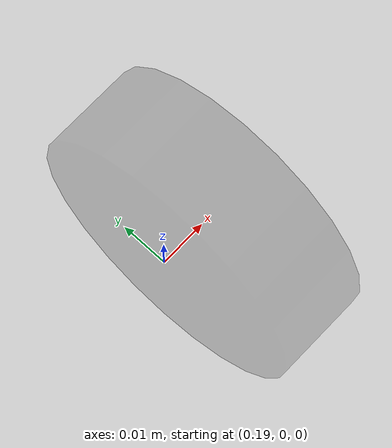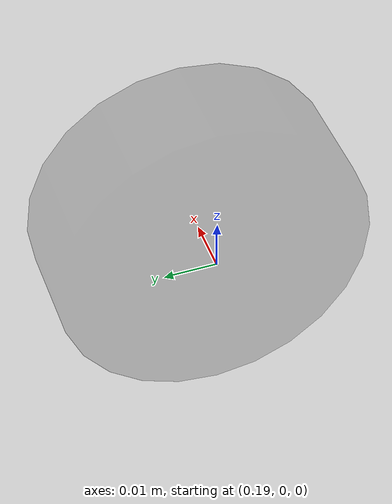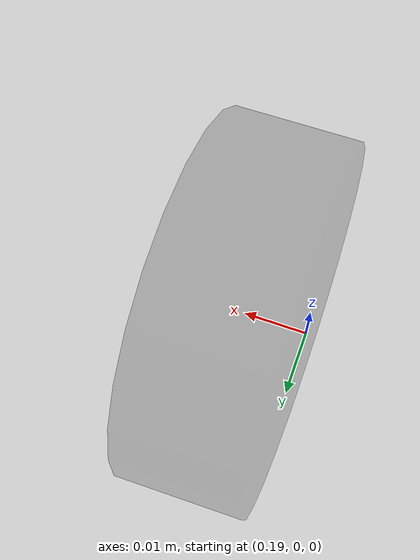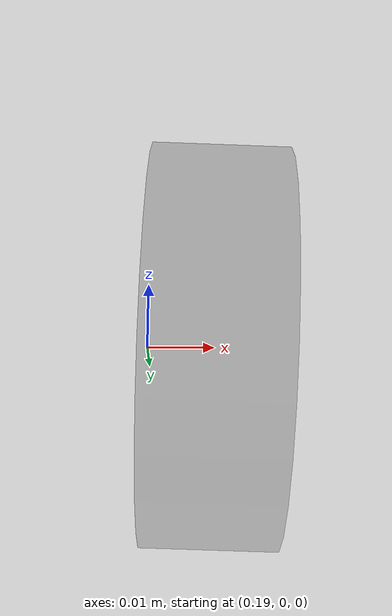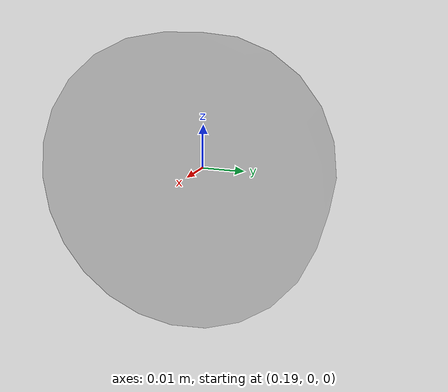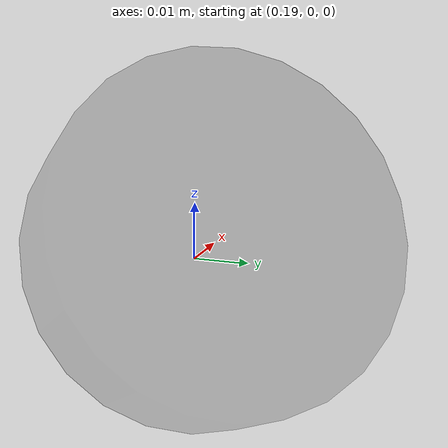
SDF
<?xml version="1.0" ?>
<sdf version="1.4">
	<model name="C920">
		<link name="body">

			<gravity>false</gravity>

			<inertial>
				<mass>0.02</mass>
			</inertial>

			<visual name="visual">
				<pose>0.2 0 0 0 1.6 0</pose>
				<geometry>
					<cylinder>
						<length>0.02</length>
						<radius>0.03</radius>
					</cylinder>
				</geometry>
				<cast_shadows>false</cast_shadows>
				<material>
					<ambient>0.0 0.0 0.0 0.1</ambient>
					<diffuse>0.0 0.0 0.0 0.11</diffuse>
				</material>
			</visual>

			<sensor type="camera" name="platform_camera">
				<update_rate>30.0</update_rate>
				<camera name="platform_camera">
					<horizontal_fov>1.3962634</horizontal_fov>
					<image>
						<width>1200</width>
						<height>700</height>
						<format>R8G8B8</format>
					</image>
					<clip>
						<near>0.02</near>
						<far>300</far>
					</clip>
				</camera>
				<!-- Let robotNamespace empty - Use parent name as namespace -->
				<plugin name="camera_controller" filename="libgazebo_ros_camera.so">
					<robotNamespace/>
					<topicName>hardware/scan</topicName>
					<alwaysOn>true</alwaysOn>
					<updateRate>0.0</updateRate>
					<cameraName>hardware/camera/platform_camera</cameraName>
					<imageTopicName>image_raw</imageTopicName>
					<cameraInfoTopicName>camera_info</cameraInfoTopicName>
					<frameName>platform_camera_link</frameName>
				</plugin>
			</sensor>
		</link>
	</model>
</sdf>
